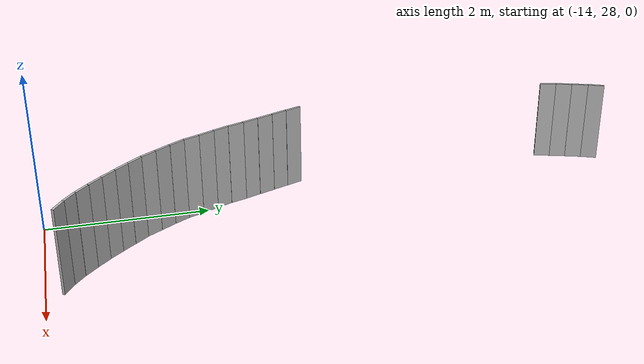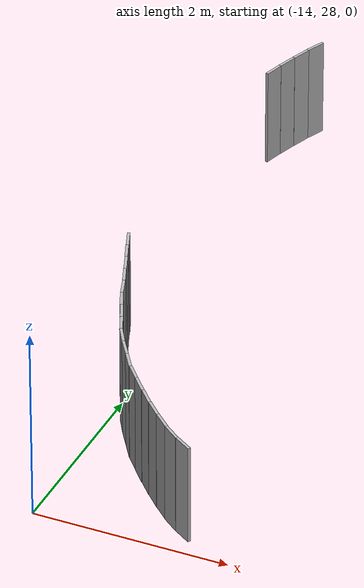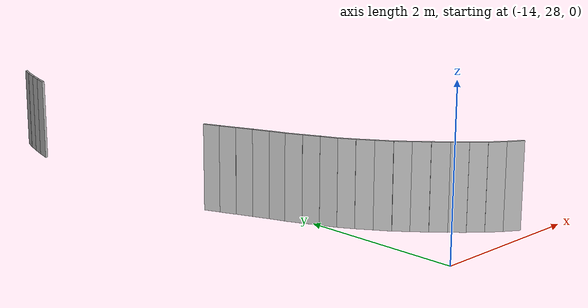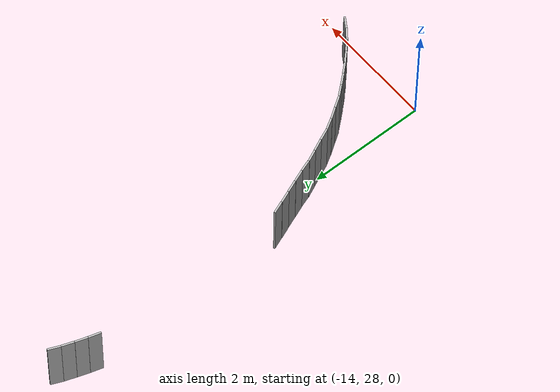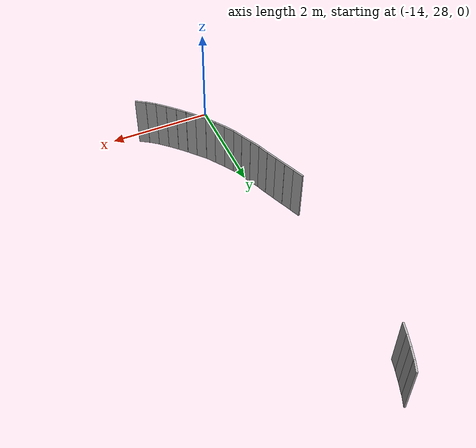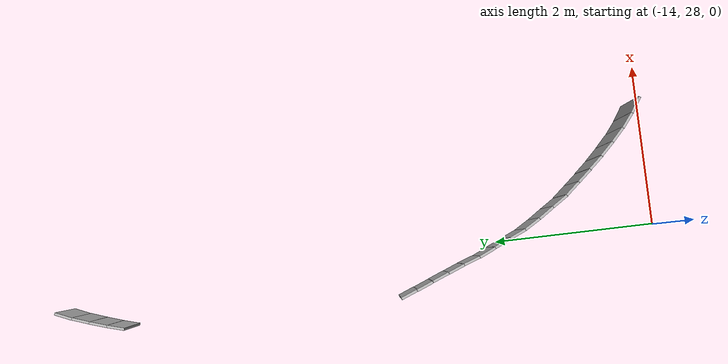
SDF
<sdf version="1.4">
 <world name="default">
  <model name="lattice_245">
   <static>1</static>
   <link name="link">
    <collision name="collision">
     <pose>0.02 0.105 0.525 0 -0 0</pose>
     <geometry><box><size>0.04 0.21 1.05</size></box></geometry>
    </collision>
    <visual name="visual"><geometry><mesh><uri>model://lattice/meshes/lattice.dae</uri></mesh></geometry></visual>
    <velocity_decay><linear>0</linear><angular>0</angular></velocity_decay>
   </link>
   <pose>-14.3852 34.9897 0 0 0 -0.339855</pose>
  </model>
  <model name="lattice_246">
   <static>1</static>
   <link name="link">
    <collision name="collision">
     <pose>0.02 0.105 0.525 0 -0 0</pose>
     <geometry><box><size>0.04 0.21 1.05</size></box></geometry>
    </collision>
    <visual name="visual"><geometry><mesh><uri>model://lattice/meshes/lattice.dae</uri></mesh></geometry></visual>
    <velocity_decay><linear>0</linear><angular>0</angular></velocity_decay>
   </link>
   <pose>-14.3159 35.1904 0 0 0 -0.410077</pose>
  </model>
  <model name="lattice_247">
   <static>1</static>
   <link name="link">
    <collision name="collision">
     <pose>0.02 0.105 0.525 0 -0 0</pose>
     <geometry><box><size>0.04 0.21 1.05</size></box></geometry>
    </collision>
    <visual name="visual"><geometry><mesh><uri>model://lattice/meshes/lattice.dae</uri></mesh></geometry></visual>
    <velocity_decay><linear>0</linear><angular>0</angular></velocity_decay>
   </link>
   <pose>-14.4511 34.7889 0 0 0 -0.313377</pose>
  </model>
  <model name="lattice_248">
   <static>1</static>
   <link name="link">
    <collision name="collision">
     <pose>0.02 0.105 0.525 0 -0 0</pose>
     <geometry><box><size>0.04 0.21 1.05</size></box></geometry>
    </collision>
    <visual name="visual"><geometry><mesh><uri>model://lattice/meshes/lattice.dae</uri></mesh></geometry></visual>
    <velocity_decay><linear>0</linear><angular>0</angular></velocity_decay>
   </link>
   <pose>-14.509 34.5877 0 0 0 -0.277756</pose>
  </model>
  <model name="lattice_264">
   <static>1</static>
   <link name="link">
    <collision name="collision">
     <pose>0.02 0.105 0.525 0 -0 0</pose>
     <geometry><box><size>0.04 0.21 1.05</size></box></geometry>
    </collision>
    <visual name="visual"><geometry><mesh><uri>model://lattice/meshes/lattice.dae</uri></mesh></geometry></visual>
    <velocity_decay><linear>0</linear><angular>0</angular></velocity_decay>
   </link>
   <pose>-14.16 30.3075 0 0 -0 0.335858</pose>
  </model>
  <model name="lattice_265">
   <static>1</static>
   <link name="link">
    <collision name="collision">
     <pose>0.02 0.105 0.525 0 -0 0</pose>
     <geometry><box><size>0.04 0.21 1.05</size></box></geometry>
    </collision>
    <visual name="visual"><geometry><mesh><uri>model://lattice/meshes/lattice.dae</uri></mesh></geometry></visual>
    <velocity_decay><linear>0</linear><angular>0</angular></velocity_decay>
   </link>
   <pose>-14.3877 30.8988 0 0 -0 0.383417</pose>
  </model>
  <model name="lattice_266">
   <static>1</static>
   <link name="link">
    <collision name="collision">
     <pose>0.02 0.105 0.525 0 -0 0</pose>
     <geometry><box><size>0.04 0.21 1.05</size></box></geometry>
    </collision>
    <visual name="visual"><geometry><mesh><uri>model://lattice/meshes/lattice.dae</uri></mesh></geometry></visual>
    <velocity_decay><linear>0</linear><angular>0</angular></velocity_decay>
   </link>
   <pose>-14.4626 31.0923 0 0 -0 0.377834</pose>
  </model>
  <model name="lattice_267">
   <static>1</static>
   <link name="link">
    <collision name="collision">
     <pose>0.02 0.105 0.525 0 -0 0</pose>
     <geometry><box><size>0.04 0.21 1.05</size></box></geometry>
    </collision>
    <visual name="visual"><geometry><mesh><uri>model://lattice/meshes/lattice.dae</uri></mesh></geometry></visual>
    <velocity_decay><linear>0</linear><angular>0</angular></velocity_decay>
   </link>
   <pose>-14.2291 30.5009 0 0 -0 0.378967</pose>
  </model>
  <model name="lattice_268">
   <static>1</static>
   <link name="link">
    <collision name="collision">
     <pose>0.02 0.105 0.525 0 -0 0</pose>
     <geometry><box><size>0.04 0.21 1.05</size></box></geometry>
    </collision>
    <visual name="visual"><geometry><mesh><uri>model://lattice/meshes/lattice.dae</uri></mesh></geometry></visual>
    <velocity_decay><linear>0</linear><angular>0</angular></velocity_decay>
   </link>
   <pose>-14.3067 30.7001 0 0 -0 0.378915</pose>
  </model>
  <model name="lattice_270">
   <static>1</static>
   <link name="link">
    <collision name="collision">
     <pose>0.02 0.105 0.525 0 -0 0</pose>
     <geometry><box><size>0.04 0.21 1.05</size></box></geometry>
    </collision>
    <visual name="visual"><geometry><mesh><uri>model://lattice/meshes/lattice.dae</uri></mesh></geometry></visual>
    <velocity_decay><linear>0</linear><angular>0</angular></velocity_decay>
   </link>
   <pose>-14.076 30.1159 0 0 -0 0.424812</pose>
  </model>
  <model name="lattice_271">
   <static>1</static>
   <link name="link">
    <collision name="collision">
     <pose>0.02 0.105 0.525 0 -0 0</pose>
     <geometry><box><size>0.04 0.21 1.05</size></box></geometry>
    </collision>
    <visual name="visual"><geometry><mesh><uri>model://lattice/meshes/lattice.dae</uri></mesh></geometry></visual>
    <velocity_decay><linear>0</linear><angular>0</angular></velocity_decay>
   </link>
   <pose>-13.9011 29.7295 0 0 -0 0.408534</pose>
  </model>
  <model name="lattice_272">
   <static>1</static>
   <link name="link">
    <collision name="collision">
     <pose>0.02 0.105 0.525 0 -0 0</pose>
     <geometry><box><size>0.04 0.21 1.05</size></box></geometry>
    </collision>
    <visual name="visual"><geometry><mesh><uri>model://lattice/meshes/lattice.dae</uri></mesh></geometry></visual>
    <velocity_decay><linear>0</linear><angular>0</angular></velocity_decay>
   </link>
   <pose>-13.9865 29.9248 0 0 -0 0.429621</pose>
  </model>
  <model name="lattice_273">
   <static>1</static>
   <link name="link">
    <collision name="collision">
     <pose>0.02 0.105 0.525 0 -0 0</pose>
     <geometry><box><size>0.04 0.21 1.05</size></box></geometry>
    </collision>
    <visual name="visual"><geometry><mesh><uri>model://lattice/meshes/lattice.dae</uri></mesh></geometry></visual>
    <velocity_decay><linear>0</linear><angular>0</angular></velocity_decay>
   </link>
   <pose>-13.7941 29.552 0 0 -0 0.540804</pose>
  </model>
  <model name="lattice_274">
   <static>1</static>
   <link name="link">
    <collision name="collision">
     <pose>0.02 0.105 0.525 0 -0 0</pose>
     <geometry><box><size>0.04 0.21 1.05</size></box></geometry>
    </collision>
    <visual name="visual"><geometry><mesh><uri>model://lattice/meshes/lattice.dae</uri></mesh></geometry></visual>
    <velocity_decay><linear>0</linear><angular>0</angular></velocity_decay>
   </link>
   <pose>-13.6753 29.3738 0 0 -0 0.592553</pose>
  </model>
  <model name="lattice_275">
   <static>1</static>
   <link name="link">
    <collision name="collision">
     <pose>0.02 0.105 0.525 0 -0 0</pose>
     <geometry><box><size>0.04 0.21 1.05</size></box></geometry>
    </collision>
    <visual name="visual"><geometry><mesh><uri>model://lattice/meshes/lattice.dae</uri></mesh></geometry></visual>
    <velocity_decay><linear>0</linear><angular>0</angular></velocity_decay>
   </link>
   <pose>-13.2845 28.8792 0 0 -0 0.713262</pose>
  </model>
  <model name="lattice_276">
   <static>1</static>
   <link name="link">
    <collision name="collision">
     <pose>0.02 0.105 0.525 0 -0 0</pose>
     <geometry><box><size>0.04 0.21 1.05</size></box></geometry>
    </collision>
    <visual name="visual"><geometry><mesh><uri>model://lattice/meshes/lattice.dae</uri></mesh></geometry></visual>
    <velocity_decay><linear>0</linear><angular>0</angular></velocity_decay>
   </link>
   <pose>-13.1398 28.7208 0 0 -0 0.725736</pose>
  </model>
  <model name="lattice_277">
   <static>1</static>
   <link name="link">
    <collision name="collision">
     <pose>0.02 0.105 0.525 0 -0 0</pose>
     <geometry><box><size>0.04 0.21 1.05</size></box></geometry>
    </collision>
    <visual name="visual"><geometry><mesh><uri>model://lattice/meshes/lattice.dae</uri></mesh></geometry></visual>
    <velocity_decay><linear>0</linear><angular>0</angular></velocity_decay>
   </link>
   <pose>-12.9911 28.5724 0 0 -0 0.773233</pose>
  </model>
  <model name="lattice_278">
   <static>1</static>
   <link name="link">
    <collision name="collision">
     <pose>0.02 0.105 0.525 0 -0 0</pose>
     <geometry><box><size>0.04 0.21 1.05</size></box></geometry>
    </collision>
    <visual name="visual"><geometry><mesh><uri>model://lattice/meshes/lattice.dae</uri></mesh></geometry></visual>
    <velocity_decay><linear>0</linear><angular>0</angular></velocity_decay>
   </link>
   <pose>-13.4173 29.0337 0 0 -0 0.708285</pose>
  </model>
  <model name="lattice_279">
   <static>1</static>
   <link name="link">
    <collision name="collision">
     <pose>0.02 0.105 0.525 0 -0 0</pose>
     <geometry><box><size>0.04 0.21 1.05</size></box></geometry>
    </collision>
    <visual name="visual"><geometry><mesh><uri>model://lattice/meshes/lattice.dae</uri></mesh></geometry></visual>
    <velocity_decay><linear>0</linear><angular>0</angular></velocity_decay>
   </link>
   <pose>-13.5594 29.1965 0 0 -0 0.579834</pose>
  </model>
  <model name="lattice_280">
   <static>1</static>
   <link name="link">
    <collision name="collision">
     <pose>0.02 0.105 0.525 0 -0 0</pose>
     <geometry><box><size>0.04 0.21 1.05</size></box></geometry>
    </collision>
    <visual name="visual"><geometry><mesh><uri>model://lattice/meshes/lattice.dae</uri></mesh></geometry></visual>
    <velocity_decay><linear>0</linear><angular>0</angular></velocity_decay>
   </link>
   <pose>-12.8342 28.4268 0 0 -0 0.817831</pose>
  </model>
  <model name="lattice_281">
   <static>1</static>
   <link name="link">
    <collision name="collision">
     <pose>0.02 0.105 0.525 0 -0 0</pose>
     <geometry><box><size>0.04 0.21 1.05</size></box></geometry>
    </collision>
    <visual name="visual"><geometry><mesh><uri>model://lattice/meshes/lattice.dae</uri></mesh></geometry></visual>
    <velocity_decay><linear>0</linear><angular>0</angular></velocity_decay>
   </link>
   <pose>-12.67 28.2961 0 0 -0 0.909354</pose>
  </model>
  <model name="lattice_285">
   <static>1</static>
   <link name="link">
    <collision name="collision">
     <pose>0.02 0.105 0.525 0 -0 0</pose>
     <geometry><box><size>0.04 0.21 1.05</size></box></geometry>
    </collision>
    <visual name="visual"><geometry><mesh><uri>model://lattice/meshes/lattice.dae</uri></mesh></geometry></visual>
    <velocity_decay><linear>0</linear><angular>0</angular></velocity_decay>
   </link>
   <pose>-12.4913 28.1819 0 0 -0 0.996988</pose>
  </model>
 </world>
</sdf>
